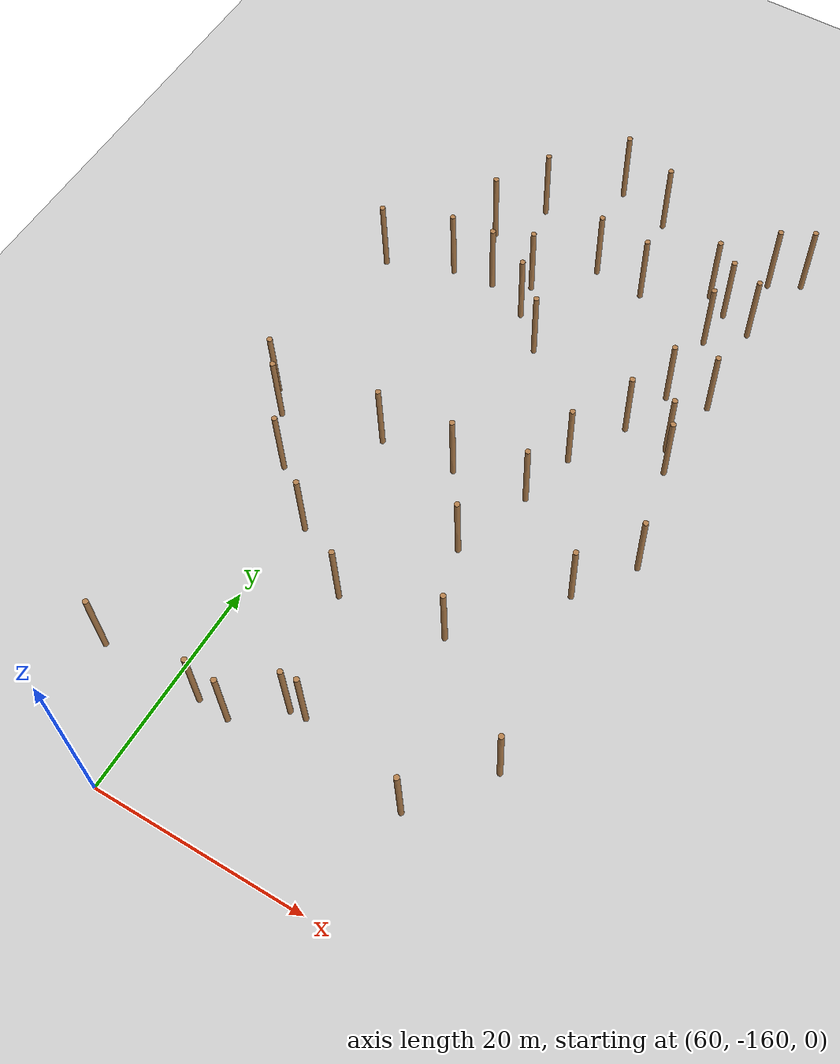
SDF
<sdf version="1.5">
 <world name="padure_tactica">
  <include><uri>model://sun</uri></include>
  <include><uri>model://ground_plane</uri></include>
  <model name="tree_38">
   <static>true</static>
   <pose>87.08 -142.48 4.0 0 0 0</pose>
   <link name="link">
    <collision name="collision">
     <geometry><cylinder><radius>0.25</radius><length>8.0</length></cylinder></geometry>
    </collision>
    <visual name="visual">
     <geometry><cylinder><radius>0.25</radius><length>8.0</length></cylinder></geometry>
     <material>
      <script><uri>file://media/materials/scripts/gazebo.material</uri><name>Gazebo/Wood</name></script>
     </material>
    </visual>
   </link>
  </model>
  <model name="tree_74">
   <static>true</static>
   <pose>69.68 -146.62 4.0 0 0 0</pose>
   <link name="link">
    <collision name="collision">
     <geometry><cylinder><radius>0.25</radius><length>8.0</length></cylinder></geometry>
    </collision>
    <visual name="visual">
     <geometry><cylinder><radius>0.25</radius><length>8.0</length></cylinder></geometry>
     <material>
      <script><uri>file://media/materials/scripts/gazebo.material</uri><name>Gazebo/Wood</name></script>
     </material>
    </visual>
   </link>
  </model>
  <model name="tree_162">
   <static>true</static>
   <pose>61.70 -100.44 4.0 0 0 0</pose>
   <link name="link">
    <collision name="collision">
     <geometry><cylinder><radius>0.25</radius><length>8.0</length></cylinder></geometry>
    </collision>
    <visual name="visual">
     <geometry><cylinder><radius>0.25</radius><length>8.0</length></cylinder></geometry>
     <material>
      <script><uri>file://media/materials/scripts/gazebo.material</uri><name>Gazebo/Wood</name></script>
     </material>
    </visual>
   </link>
  </model>
  <model name="tree_167">
   <static>true</static>
   <pose>56.06 -127.54 4.0 0 0 0</pose>
   <link name="link">
    <collision name="collision">
     <geometry><cylinder><radius>0.25</radius><length>8.0</length></cylinder></geometry>
    </collision>
    <visual name="visual">
     <geometry><cylinder><radius>0.25</radius><length>8.0</length></cylinder></geometry>
     <material>
      <script><uri>file://media/materials/scripts/gazebo.material</uri><name>Gazebo/Wood</name></script>
     </material>
    </visual>
   </link>
  </model>
  <model name="tree_173">
   <static>true</static>
   <pose>51.02 -120.92 4.0 0 0 0</pose>
   <link name="link">
    <collision name="collision">
     <geometry><cylinder><radius>0.25</radius><length>8.0</length></cylinder></geometry>
    </collision>
    <visual name="visual">
     <geometry><cylinder><radius>0.25</radius><length>8.0</length></cylinder></geometry>
     <material>
      <script><uri>file://media/materials/scripts/gazebo.material</uri><name>Gazebo/Wood</name></script>
     </material>
    </visual>
   </link>
  </model>
  <model name="tree_175">
   <static>true</static>
   <pose>82.36 -92.47 4.0 0 0 0</pose>
   <link name="link">
    <collision name="collision">
     <geometry><cylinder><radius>0.25</radius><length>8.0</length></cylinder></geometry>
    </collision>
    <visual name="visual">
     <geometry><cylinder><radius>0.25</radius><length>8.0</length></cylinder></geometry>
     <material>
      <script><uri>file://media/materials/scripts/gazebo.material</uri><name>Gazebo/Wood</name></script>
     </material>
    </visual>
   </link>
  </model>
  <model name="tree_181">
   <static>true</static>
   <pose>67.20 -84.00 4.0 0 0 0</pose>
   <link name="link">
    <collision name="collision">
     <geometry><cylinder><radius>0.25</radius><length>8.0</length></cylinder></geometry>
    </collision>
    <visual name="visual">
     <geometry><cylinder><radius>0.25</radius><length>8.0</length></cylinder></geometry>
     <material>
      <script><uri>file://media/materials/scripts/gazebo.material</uri><name>Gazebo/Wood</name></script>
     </material>
    </visual>
   </link>
  </model>
  <model name="tree_190">
   <static>true</static>
   <pose>82.01 -149.28 4.0 0 0 0</pose>
   <link name="link">
    <collision name="collision">
     <geometry><cylinder><radius>0.25</radius><length>8.0</length></cylinder></geometry>
    </collision>
    <visual name="visual">
     <geometry><cylinder><radius>0.25</radius><length>8.0</length></cylinder></geometry>
     <material>
      <script><uri>file://media/materials/scripts/gazebo.material</uri><name>Gazebo/Wood</name></script>
     </material>
    </visual>
   </link>
  </model>
  <model name="tree_196">
   <static>true</static>
   <pose>80.26 -91.05 4.0 0 0 0</pose>
   <link name="link">
    <collision name="collision">
     <geometry><cylinder><radius>0.25</radius><length>8.0</length></cylinder></geometry>
    </collision>
    <visual name="visual">
     <geometry><cylinder><radius>0.25</radius><length>8.0</length></cylinder></geometry>
     <material>
      <script><uri>file://media/materials/scripts/gazebo.material</uri><name>Gazebo/Wood</name></script>
     </material>
    </visual>
   </link>
  </model>
  <model name="tree_198">
   <static>true</static>
   <pose>82.17 -96.22 4.0 0 0 0</pose>
   <link name="link">
    <collision name="collision">
     <geometry><cylinder><radius>0.25</radius><length>8.0</length></cylinder></geometry>
    </collision>
    <visual name="visual">
     <geometry><cylinder><radius>0.25</radius><length>8.0</length></cylinder></geometry>
     <material>
      <script><uri>file://media/materials/scripts/gazebo.material</uri><name>Gazebo/Wood</name></script>
     </material>
    </visual>
   </link>
  </model>
  <model name="tree_234">
   <static>true</static>
   <pose>61.18 -131.83 4.0 0 0 0</pose>
   <link name="link">
    <collision name="collision">
     <geometry><cylinder><radius>0.25</radius><length>8.0</length></cylinder></geometry>
    </collision>
    <visual name="visual">
     <geometry><cylinder><radius>0.25</radius><length>8.0</length></cylinder></geometry>
     <material>
      <script><uri>file://media/materials/scripts/gazebo.material</uri><name>Gazebo/Wood</name></script>
     </material>
    </visual>
   </link>
  </model>
  <model name="tree_240">
   <static>true</static>
   <pose>73.76 -126.83 4.0 0 0 0</pose>
   <link name="link">
    <collision name="collision">
     <geometry><cylinder><radius>0.25</radius><length>8.0</length></cylinder></geometry>
    </collision>
    <visual name="visual">
     <geometry><cylinder><radius>0.25</radius><length>8.0</length></cylinder></geometry>
     <material>
      <script><uri>file://media/materials/scripts/gazebo.material</uri><name>Gazebo/Wood</name></script>
     </material>
    </visual>
   </link>
  </model>
  <model name="tree_250">
   <static>true</static>
   <pose>62.68 -149.58 4.0 0 0 0</pose>
   <link name="link">
    <collision name="collision">
     <geometry><cylinder><radius>0.25</radius><length>8.0</length></cylinder></geometry>
    </collision>
    <visual name="visual">
     <geometry><cylinder><radius>0.25</radius><length>8.0</length></cylinder></geometry>
     <material>
      <script><uri>file://media/materials/scripts/gazebo.material</uri><name>Gazebo/Wood</name></script>
     </material>
    </visual>
   </link>
  </model>
  <model name="tree_283">
   <static>true</static>
   <pose>84.52 -108.57 4.0 0 0 0</pose>
   <link name="link">
    <collision name="collision">
     <geometry><cylinder><radius>0.25</radius><length>8.0</length></cylinder></geometry>
    </collision>
    <visual name="visual">
     <geometry><cylinder><radius>0.25</radius><length>8.0</length></cylinder></geometry>
     <material>
      <script><uri>file://media/materials/scripts/gazebo.material</uri><name>Gazebo/Wood</name></script>
     </material>
    </visual>
   </link>
  </model>
  <model name="tree_301">
   <static>true</static>
   <pose>72.43 -85.63 4.0 0 0 0</pose>
   <link name="link">
    <collision name="collision">
     <geometry><cylinder><radius>0.25</radius><length>8.0</length></cylinder></geometry>
    </collision>
    <visual name="visual">
     <geometry><cylinder><radius>0.25</radius><length>8.0</length></cylinder></geometry>
     <material>
      <script><uri>file://media/materials/scripts/gazebo.material</uri><name>Gazebo/Wood</name></script>
     </material>
    </visual>
   </link>
  </model>
  <model name="tree_310">
   <static>true</static>
   <pose>80.36 -108.46 4.0 0 0 0</pose>
   <link name="link">
    <collision name="collision">
     <geometry><cylinder><radius>0.25</radius><length>8.0</length></cylinder></geometry>
    </collision>
    <visual name="visual">
     <geometry><cylinder><radius>0.25</radius><length>8.0</length></cylinder></geometry>
     <material>
      <script><uri>file://media/materials/scripts/gazebo.material</uri><name>Gazebo/Wood</name></script>
     </material>
    </visual>
   </link>
  </model>
  <model name="tree_344">
   <static>true</static>
   <pose>74.47 -94.33 4.0 0 0 0</pose>
   <link name="link">
    <collision name="collision">
     <geometry><cylinder><radius>0.25</radius><length>8.0</length></cylinder></geometry>
    </collision>
    <visual name="visual">
     <geometry><cylinder><radius>0.25</radius><length>8.0</length></cylinder></geometry>
     <material>
      <script><uri>file://media/materials/scripts/gazebo.material</uri><name>Gazebo/Wood</name></script>
     </material>
    </visual>
   </link>
  </model>
  <model name="tree_357">
   <static>true</static>
   <pose>65.83 -102.16 4.0 0 0 0</pose>
   <link name="link">
    <collision name="collision">
     <geometry><cylinder><radius>0.25</radius><length>8.0</length></cylinder></geometry>
    </collision>
    <visual name="visual">
     <geometry><cylinder><radius>0.25</radius><length>8.0</length></cylinder></geometry>
     <material>
      <script><uri>file://media/materials/scripts/gazebo.material</uri><name>Gazebo/Wood</name></script>
     </material>
    </visual>
   </link>
  </model>
  <model name="tree_410">
   <static>true</static>
   <pose>65.08 -98.82 4.0 0 0 0</pose>
   <link name="link">
    <collision name="collision">
     <geometry><cylinder><radius>0.25</radius><length>8.0</length></cylinder></geometry>
    </collision>
    <visual name="visual">
     <geometry><cylinder><radius>0.25</radius><length>8.0</length></cylinder></geometry>
     <material>
      <script><uri>file://media/materials/scripts/gazebo.material</uri><name>Gazebo/Wood</name></script>
     </material>
    </visual>
   </link>
  </model>
  <model name="tree_421">
   <static>true</static>
   <pose>68.93 -105.12 4.0 0 0 0</pose>
   <link name="link">
    <collision name="collision">
     <geometry><cylinder><radius>0.25</radius><length>8.0</length></cylinder></geometry>
    </collision>
    <visual name="visual">
     <geometry><cylinder><radius>0.25</radius><length>8.0</length></cylinder></geometry>
     <material>
      <script><uri>file://media/materials/scripts/gazebo.material</uri><name>Gazebo/Wood</name></script>
     </material>
    </visual>
   </link>
  </model>
  <model name="tree_429">
   <static>true</static>
   <pose>71.13 -146.52 4.0 0 0 0</pose>
   <link name="link">
    <collision name="collision">
     <geometry><cylinder><radius>0.25</radius><length>8.0</length></cylinder></geometry>
    </collision>
    <visual name="visual">
     <geometry><cylinder><radius>0.25</radius><length>8.0</length></cylinder></geometry>
     <material>
      <script><uri>file://media/materials/scripts/gazebo.material</uri><name>Gazebo/Wood</name></script>
     </material>
    </visual>
   </link>
  </model>
  <model name="tree_483">
   <static>true</static>
   <pose>85.75 -102.66 4.0 0 0 0</pose>
   <link name="link">
    <collision name="collision">
     <geometry><cylinder><radius>0.25</radius><length>8.0</length></cylinder></geometry>
    </collision>
    <visual name="visual">
     <geometry><cylinder><radius>0.25</radius><length>8.0</length></cylinder></geometry>
     <material>
      <script><uri>file://media/materials/scripts/gazebo.material</uri><name>Gazebo/Wood</name></script>
     </material>
    </visual>
   </link>
  </model>
  <model name="tree_494">
   <static>true</static>
   <pose>51.52 -103.25 4.0 0 0 0</pose>
   <link name="link">
    <collision name="collision">
     <geometry><cylinder><radius>0.25</radius><length>8.0</length></cylinder></geometry>
    </collision>
    <visual name="visual">
     <geometry><cylinder><radius>0.25</radius><length>8.0</length></cylinder></geometry>
     <material>
      <script><uri>file://media/materials/scripts/gazebo.material</uri><name>Gazebo/Wood</name></script>
     </material>
    </visual>
   </link>
  </model>
  <model name="tree_551">
   <static>true</static>
   <pose>85.48 -110.78 4.0 0 0 0</pose>
   <link name="link">
    <collision name="collision">
     <geometry><cylinder><radius>0.25</radius><length>8.0</length></cylinder></geometry>
    </collision>
    <visual name="visual">
     <geometry><cylinder><radius>0.25</radius><length>8.0</length></cylinder></geometry>
     <material>
      <script><uri>file://media/materials/scripts/gazebo.material</uri><name>Gazebo/Wood</name></script>
     </material>
    </visual>
   </link>
  </model>
  <model name="tree_579">
   <static>true</static>
   <pose>87.25 -85.56 4.0 0 0 0</pose>
   <link name="link">
    <collision name="collision">
     <geometry><cylinder><radius>0.25</radius><length>8.0</length></cylinder></geometry>
    </collision>
    <visual name="visual">
     <geometry><cylinder><radius>0.25</radius><length>8.0</length></cylinder></geometry>
     <material>
      <script><uri>file://media/materials/scripts/gazebo.material</uri><name>Gazebo/Wood</name></script>
     </material>
    </visual>
   </link>
  </model>
  <model name="tree_612">
   <static>true</static>
   <pose>57.68 -100.86 4.0 0 0 0</pose>
   <link name="link">
    <collision name="collision">
     <geometry><cylinder><radius>0.25</radius><length>8.0</length></cylinder></geometry>
    </collision>
    <visual name="visual">
     <geometry><cylinder><radius>0.25</radius><length>8.0</length></cylinder></geometry>
     <material>
      <script><uri>file://media/materials/scripts/gazebo.material</uri><name>Gazebo/Wood</name></script>
     </material>
    </visual>
   </link>
  </model>
  <model name="tree_643">
   <static>true</static>
   <pose>85.30 -93.38 4.0 0 0 0</pose>
   <link name="link">
    <collision name="collision">
     <geometry><cylinder><radius>0.25</radius><length>8.0</length></cylinder></geometry>
    </collision>
    <visual name="visual">
     <geometry><cylinder><radius>0.25</radius><length>8.0</length></cylinder></geometry>
     <material>
      <script><uri>file://media/materials/scripts/gazebo.material</uri><name>Gazebo/Wood</name></script>
     </material>
    </visual>
   </link>
  </model>
  <model name="tree_669">
   <static>true</static>
   <pose>69.27 -120.21 4.0 0 0 0</pose>
   <link name="link">
    <collision name="collision">
     <geometry><cylinder><radius>0.25</radius><length>8.0</length></cylinder></geometry>
    </collision>
    <visual name="visual">
     <geometry><cylinder><radius>0.25</radius><length>8.0</length></cylinder></geometry>
     <material>
      <script><uri>file://media/materials/scripts/gazebo.material</uri><name>Gazebo/Wood</name></script>
     </material>
    </visual>
   </link>
  </model>
  <model name="tree_673">
   <static>true</static>
   <pose>87.92 -120.48 4.0 0 0 0</pose>
   <link name="link">
    <collision name="collision">
     <geometry><cylinder><radius>0.25</radius><length>8.0</length></cylinder></geometry>
    </collision>
    <visual name="visual">
     <geometry><cylinder><radius>0.25</radius><length>8.0</length></cylinder></geometry>
     <material>
      <script><uri>file://media/materials/scripts/gazebo.material</uri><name>Gazebo/Wood</name></script>
     </material>
    </visual>
   </link>
  </model>
  <model name="tree_676">
   <static>true</static>
   <pose>84.45 -87.09 4.0 0 0 0</pose>
   <link name="link">
    <collision name="collision">
     <geometry><cylinder><radius>0.25</radius><length>8.0</length></cylinder></geometry>
    </collision>
    <visual name="visual">
     <geometry><cylinder><radius>0.25</radius><length>8.0</length></cylinder></geometry>
     <material>
      <script><uri>file://media/materials/scripts/gazebo.material</uri><name>Gazebo/Wood</name></script>
     </material>
    </visual>
   </link>
  </model>
  <model name="tree_738">
   <static>true</static>
   <pose>52.98 -149.50 4.0 0 0 0</pose>
   <link name="link">
    <collision name="collision">
     <geometry><cylinder><radius>0.25</radius><length>8.0</length></cylinder></geometry>
    </collision>
    <visual name="visual">
     <geometry><cylinder><radius>0.25</radius><length>8.0</length></cylinder></geometry>
     <material>
      <script><uri>file://media/materials/scripts/gazebo.material</uri><name>Gazebo/Wood</name></script>
     </material>
    </visual>
   </link>
  </model>
  <model name="tree_840">
   <static>true</static>
   <pose>58.82 -94.89 4.0 0 0 0</pose>
   <link name="link">
    <collision name="collision">
     <geometry><cylinder><radius>0.25</radius><length>8.0</length></cylinder></geometry>
    </collision>
    <visual name="visual">
     <geometry><cylinder><radius>0.25</radius><length>8.0</length></cylinder></geometry>
     <material>
      <script><uri>file://media/materials/scripts/gazebo.material</uri><name>Gazebo/Wood</name></script>
     </material>
    </visual>
   </link>
  </model>
  <model name="tree_858">
   <static>true</static>
   <pose>84.33 -125.78 4.0 0 0 0</pose>
   <link name="link">
    <collision name="collision">
     <geometry><cylinder><radius>0.25</radius><length>8.0</length></cylinder></geometry>
    </collision>
    <visual name="visual">
     <geometry><cylinder><radius>0.25</radius><length>8.0</length></cylinder></geometry>
     <material>
      <script><uri>file://media/materials/scripts/gazebo.material</uri><name>Gazebo/Wood</name></script>
     </material>
    </visual>
   </link>
  </model>
  <model name="tree_890">
   <static>true</static>
   <pose>67.33 -135.82 4.0 0 0 0</pose>
   <link name="link">
    <collision name="collision">
     <geometry><cylinder><radius>0.25</radius><length>8.0</length></cylinder></geometry>
    </collision>
    <visual name="visual">
     <geometry><cylinder><radius>0.25</radius><length>8.0</length></cylinder></geometry>
     <material>
      <script><uri>file://media/materials/scripts/gazebo.material</uri><name>Gazebo/Wood</name></script>
     </material>
    </visual>
   </link>
  </model>
  <model name="tree_899">
   <static>true</static>
   <pose>69.58 -93.92 4.0 0 0 0</pose>
   <link name="link">
    <collision name="collision">
     <geometry><cylinder><radius>0.25</radius><length>8.0</length></cylinder></geometry>
    </collision>
    <visual name="visual">
     <geometry><cylinder><radius>0.25</radius><length>8.0</length></cylinder></geometry>
     <material>
      <script><uri>file://media/materials/scripts/gazebo.material</uri><name>Gazebo/Wood</name></script>
     </material>
    </visual>
   </link>
  </model>
  <model name="tree_989">
   <static>true</static>
   <pose>77.12 -134.58 4.0 0 0 0</pose>
   <link name="link">
    <collision name="collision">
     <geometry><cylinder><radius>0.25</radius><length>8.0</length></cylinder></geometry>
    </collision>
    <visual name="visual">
     <geometry><cylinder><radius>0.25</radius><length>8.0</length></cylinder></geometry>
     <material>
      <script><uri>file://media/materials/scripts/gazebo.material</uri><name>Gazebo/Wood</name></script>
     </material>
    </visual>
   </link>
  </model>
  <model name="tree_1033">
   <static>true</static>
   <pose>62.16 -120.75 4.0 0 0 0</pose>
   <link name="link">
    <collision name="collision">
     <geometry><cylinder><radius>0.25</radius><length>8.0</length></cylinder></geometry>
    </collision>
    <visual name="visual">
     <geometry><cylinder><radius>0.25</radius><length>8.0</length></cylinder></geometry>
     <material>
      <script><uri>file://media/materials/scripts/gazebo.material</uri><name>Gazebo/Wood</name></script>
     </material>
    </visual>
   </link>
  </model>
  <model name="tree_1062">
   <static>true</static>
   <pose>52.72 -122.95 4.0 0 0 0</pose>
   <link name="link">
    <collision name="collision">
     <geometry><cylinder><radius>0.25</radius><length>8.0</length></cylinder></geometry>
    </collision>
    <visual name="visual">
     <geometry><cylinder><radius>0.25</radius><length>8.0</length></cylinder></geometry>
     <material>
      <script><uri>file://media/materials/scripts/gazebo.material</uri><name>Gazebo/Wood</name></script>
     </material>
    </visual>
   </link>
  </model>
  <model name="tree_1103">
   <static>true</static>
   <pose>61.65 -89.90 4.0 0 0 0</pose>
   <link name="link">
    <collision name="collision">
     <geometry><cylinder><radius>0.25</radius><length>8.0</length></cylinder></geometry>
    </collision>
    <visual name="visual">
     <geometry><cylinder><radius>0.25</radius><length>8.0</length></cylinder></geometry>
     <material>
      <script><uri>file://media/materials/scripts/gazebo.material</uri><name>Gazebo/Wood</name></script>
     </material>
    </visual>
   </link>
  </model>
  <model name="tree_1150">
   <static>true</static>
   <pose>76.23 -119.42 4.0 0 0 0</pose>
   <link name="link">
    <collision name="collision">
     <geometry><cylinder><radius>0.25</radius><length>8.0</length></cylinder></geometry>
    </collision>
    <visual name="visual">
     <geometry><cylinder><radius>0.25</radius><length>8.0</length></cylinder></geometry>
     <material>
      <script><uri>file://media/materials/scripts/gazebo.material</uri><name>Gazebo/Wood</name></script>
     </material>
    </visual>
   </link>
  </model>
  <model name="tree_1153">
   <static>true</static>
   <pose>81.99 -103.56 4.0 0 0 0</pose>
   <link name="link">
    <collision name="collision">
     <geometry><cylinder><radius>0.25</radius><length>8.0</length></cylinder></geometry>
    </collision>
    <visual name="visual">
     <geometry><cylinder><radius>0.25</radius><length>8.0</length></cylinder></geometry>
     <material>
      <script><uri>file://media/materials/scripts/gazebo.material</uri><name>Gazebo/Wood</name></script>
     </material>
    </visual>
   </link>
  </model>
  <model name="tree_1159">
   <static>true</static>
   <pose>77.51 -113.99 4.0 0 0 0</pose>
   <link name="link">
    <collision name="collision">
     <geometry><cylinder><radius>0.25</radius><length>8.0</length></cylinder></geometry>
    </collision>
    <visual name="visual">
     <geometry><cylinder><radius>0.25</radius><length>8.0</length></cylinder></geometry>
     <material>
      <script><uri>file://media/materials/scripts/gazebo.material</uri><name>Gazebo/Wood</name></script>
     </material>
    </visual>
   </link>
  </model>
  <model name="tree_1187">
   <static>true</static>
   <pose>65.66 -149.81 4.0 0 0 0</pose>
   <link name="link">
    <collision name="collision">
     <geometry><cylinder><radius>0.25</radius><length>8.0</length></cylinder></geometry>
    </collision>
    <visual name="visual">
     <geometry><cylinder><radius>0.25</radius><length>8.0</length></cylinder></geometry>
     <material>
      <script><uri>file://media/materials/scripts/gazebo.material</uri><name>Gazebo/Wood</name></script>
     </material>
    </visual>
   </link>
  </model>
 </world>
</sdf>
